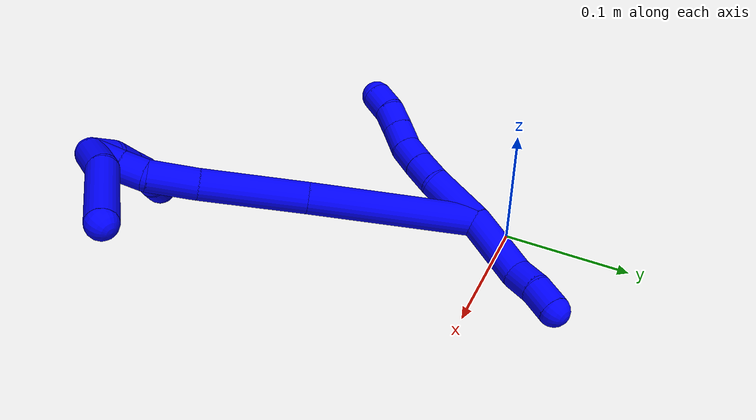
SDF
<sdf version="1.7">
 <world name="default">
  <model name="photoneo_s_sensor">
   <static>1</static>
   <pose>0 0 2 1.57079 1.57079 3.14159</pose>
   <link name="link">
    <inertial><mass>0.1</mass></inertial>
    <sensor name="sensor" type="depth">
     <update_rate>30</update_rate>
     <camera>
      <horizontal_fov>1.22</horizontal_fov>
      <image><width>1920</width><height>1200</height><format>B8G8R8</format></image>
      <clip><near>0.1</near><far>4</far></clip>
      <depth_camera><output>points</output></depth_camera>
     </camera>
     <plugin name="camera_plugin" filename="libgazebo_ros_depth_camera.so">
      <baseline>0.2</baseline>
      <alwaysOn>1</alwaysOn>
      <updateRate>0.0</updateRate>
      <cameraName>camera_ir</cameraName>
      <imageTopicName>/camera/color/image_raw</imageTopicName>
      <cameraInfoTopicName>/camera/color/camera_info</cameraInfoTopicName>
      <depthImageTopicName>/camera/depth/image_raw</depthImageTopicName>
      <depthImageCameraInfoTopicName>/camera/depth/camera_info</depthImageCameraInfoTopicName>
      <pointCloudTopicName>/camera/depth/points</pointCloudTopicName>
      <frameName>fr_optical</frameName>
      <pointCloudCutoff>0.1</pointCloudCutoff>
      <pointCloudCutoffMax>2.0</pointCloudCutoffMax>
      <distortionK1>0</distortionK1>
      <distortionK2>0</distortionK2>
      <distortionK3>0</distortionK3>
      <distortionT1>0</distortionT1>
      <distortionT2>0</distortionT2>
      <CxPrime>0</CxPrime>
      <Cx>0</Cx>
      <Cy>0</Cy>
      <focalLength>0</focalLength>
      <hackBaseline>0</hackBaseline>
     </plugin>
    </sensor>
   </link>
  </model>
  <model name="bin">
   <static>1</static>
   <link name="bottom">
    <collision name="collision-bottom">
     <pose>0 0 -0.01 0 -0 0</pose>
     <geometry><box><size>0.8 0.6 0.02</size></box></geometry>
     <surface>
      <friction><ode><mu>100</mu><mu2>100</mu2></ode></friction>
      <contact><collide_bitmask>65535</collide_bitmask></contact>
     </surface>
    </collision>
   </link>
   <link name="west_wall">
    <collision name="collision-west_wall">
     <pose>-0.41 0 0.1 0 -0 0</pose>
     <geometry><box><size>0.02 0.6 0.2</size></box></geometry>
     <surface>
      <friction><ode><mu>100</mu><mu2>100</mu2></ode></friction>
      <contact><collide_bitmask>65535</collide_bitmask></contact>
     </surface>
    </collision>
   </link>
   <link name="east_wall">
    <collision name="collision-east_wall">
     <pose>0.41 0 0.1 0 -0 0</pose>
     <geometry><box><size>0.02 0.6 0.2</size></box></geometry>
     <surface>
      <friction><ode><mu>100</mu><mu2>100</mu2></ode></friction>
      <contact><collide_bitmask>65535</collide_bitmask></contact>
     </surface>
    </collision>
   </link>
   <link name="south_wall">
    <collision name="collision-south_wall">
     <pose>0 -0.31 0.1 0 -0 0</pose>
     <geometry><box><size>0.8 0.02 0.2</size></box></geometry>
     <surface>
      <friction><ode><mu>100</mu><mu2>100</mu2></ode></friction>
      <contact><collide_bitmask>65535</collide_bitmask></contact>
     </surface>
    </collision>
   </link>
   <link name="north_wall">
    <collision name="collision-north_wall">
     <pose>0 0.31 0.1 0 -0 0</pose>
     <geometry><box><size>0.8 0.02 0.2</size></box></geometry>
     <surface>
      <friction><ode><mu>100</mu><mu2>100</mu2></ode></friction>
      <contact><collide_bitmask>65535</collide_bitmask></contact>
     </surface>
    </collision>
   </link>
  </model>
  <model name="1">
   <static>0</static>
   <link name="1">
    <collision name="collision-cylinder-e_1_2_8">
     <pose>0.003318 -0.000159 0.022871 0.006957 0.144087 0.000502</pose>
     <geometry><cylinder><radius>0.0125</radius><length>0.046222</length></cylinder></geometry>
     <surface>
      <friction><ode><mu>1.16</mu><mu2>1.16</mu2><slip1>0</slip1><slip2>0</slip2></ode></friction>
      <contact><ode><kp>1e+06</kp><kd>1</kd><max_vel>0</max_vel><min_depth>0.001</min_depth></ode></contact>
     </surface>
    </collision>
    <visual name="visual-cylinder-e_1_2_8">
     <pose>0.003318 -0.000159 0.022871 0.006957 0.144087 0.000502</pose>
     <geometry><cylinder><radius>0.0125</radius><length>0.046222</length></cylinder></geometry>
     <material><ambient>0 0 1 1</ambient></material>
    </visual>
    <collision name="collision-cylinder-e_2_8_9">
     <pose>0.006511 0.001765 0.056602 -0.18955 -0.011362 0.00108</pose>
     <geometry><cylinder><radius>0.0125</radius><length>0.022118</length></cylinder></geometry>
     <surface>
      <friction><ode><mu>1.16</mu><mu2>1.16</mu2><slip1>0</slip1><slip2>0</slip2></ode></friction>
      <contact><ode><kp>1e+06</kp><kd>1</kd><max_vel>0</max_vel><min_depth>0.001</min_depth></ode></contact>
     </surface>
    </collision>
    <visual name="visual-cylinder-e_2_8_9">
     <pose>0.006511 0.001765 0.056602 -0.18955 -0.011362 0.00108</pose>
     <geometry><cylinder><radius>0.0125</radius><length>0.022118</length></cylinder></geometry>
     <material><ambient>0 0 1 1</ambient></material>
    </visual>
    <collision name="collision-cylinder-e_3_9_10">
     <pose>0.006359 0.006274 0.077666 -0.233363 -0.002557 0.0003</pose>
     <geometry><cylinder><radius>0.0125</radius><length>0.020976</length></cylinder></geometry>
     <surface>
      <friction><ode><mu>1.16</mu><mu2>1.16</mu2><slip1>0</slip1><slip2>0</slip2></ode></friction>
      <contact><ode><kp>1e+06</kp><kd>1</kd><max_vel>0</max_vel><min_depth>0.001</min_depth></ode></contact>
     </surface>
    </collision>
    <visual name="visual-cylinder-e_3_9_10">
     <pose>0.006359 0.006274 0.077666 -0.233363 -0.002557 0.0003</pose>
     <geometry><cylinder><radius>0.0125</radius><length>0.020976</length></cylinder></geometry>
     <material><ambient>0 0 1 1</ambient></material>
    </visual>
    <collision name="collision-cylinder-e_4_10_11">
     <pose>0.007836 0.012669 0.097094 -0.406338 0.148664 -0.030681</pose>
     <geometry><cylinder><radius>0.0125</radius><length>0.020308</length></cylinder></geometry>
     <surface>
      <friction><ode><mu>1.16</mu><mu2>1.16</mu2><slip1>0</slip1><slip2>0</slip2></ode></friction>
      <contact><ode><kp>1e+06</kp><kd>1</kd><max_vel>0</max_vel><min_depth>0.001</min_depth></ode></contact>
     </surface>
    </collision>
    <visual name="visual-cylinder-e_4_10_11">
     <pose>0.007836 0.012669 0.097094 -0.406338 0.148664 -0.030681</pose>
     <geometry><cylinder><radius>0.0125</radius><length>0.020308</length></cylinder></geometry>
     <material><ambient>0 0 1 1</ambient></material>
    </visual>
    <collision name="collision-cylinder-e_5_11_12">
     <pose>0.011058 0.020167 0.11552 -0.366214 0.172614 -0.032042</pose>
     <geometry><cylinder><radius>0.0125</radius><length>0.020009</length></cylinder></geometry>
     <surface>
      <friction><ode><mu>1.16</mu><mu2>1.16</mu2><slip1>0</slip1><slip2>0</slip2></ode></friction>
      <contact><ode><kp>1e+06</kp><kd>1</kd><max_vel>0</max_vel><min_depth>0.001</min_depth></ode></contact>
     </surface>
    </collision>
    <visual name="visual-cylinder-e_5_11_12">
     <pose>0.011058 0.020167 0.11552 -0.366214 0.172614 -0.032042</pose>
     <geometry><cylinder><radius>0.0125</radius><length>0.020009</length></cylinder></geometry>
     <material><ambient>0 0 1 1</ambient></material>
    </visual>
    <collision name="collision-cylinder-e_6_12_6">
     <pose>0.012884 0.025818 0.134682 -0.209886 0.010556 -0.001112</pose>
     <geometry><cylinder><radius>0.0125</radius><length>0.020367</length></cylinder></geometry>
     <surface>
      <friction><ode><mu>1.16</mu><mu2>1.16</mu2><slip1>0</slip1><slip2>0</slip2></ode></friction>
      <contact><ode><kp>1e+06</kp><kd>1</kd><max_vel>0</max_vel><min_depth>0.001</min_depth></ode></contact>
     </surface>
    </collision>
    <visual name="visual-cylinder-e_6_12_6">
     <pose>0.012884 0.025818 0.134682 -0.209886 0.010556 -0.001112</pose>
     <geometry><cylinder><radius>0.0125</radius><length>0.020367</length></cylinder></geometry>
     <material><ambient>0 0 1 1</ambient></material>
    </visual>
    <collision name="collision-cylinder-e_1_2_13">
     <pose>-0.003586 -0.004512 -0.026986 2.97593 -0.130334 -1.33238</pose>
     <geometry><cylinder><radius>0.0125</radius><length>0.055188</length></cylinder></geometry>
     <surface>
      <friction><ode><mu>1.16</mu><mu2>1.16</mu2><slip1>0</slip1><slip2>0</slip2></ode></friction>
      <contact><ode><kp>1e+06</kp><kd>1</kd><max_vel>0</max_vel><min_depth>0.001</min_depth></ode></contact>
     </surface>
    </collision>
    <visual name="visual-cylinder-e_1_2_13">
     <pose>-0.003586 -0.004512 -0.026986 2.97593 -0.130334 -1.33238</pose>
     <geometry><cylinder><radius>0.0125</radius><length>0.055188</length></cylinder></geometry>
     <material><ambient>0 0 1 1</ambient></material>
    </visual>
    <collision name="collision-cylinder-e_2_13_14">
     <pose>-0.004801 -0.010677 -0.064565 2.98676 0.217713 1.90704</pose>
     <geometry><cylinder><radius>0.0125</radius><length>0.021963</length></cylinder></geometry>
     <surface>
      <friction><ode><mu>1.16</mu><mu2>1.16</mu2><slip1>0</slip1><slip2>0</slip2></ode></friction>
      <contact><ode><kp>1e+06</kp><kd>1</kd><max_vel>0</max_vel><min_depth>0.001</min_depth></ode></contact>
     </surface>
    </collision>
    <visual name="visual-cylinder-e_2_13_14">
     <pose>-0.004801 -0.010677 -0.064565 2.98676 0.217713 1.90704</pose>
     <geometry><cylinder><radius>0.0125</radius><length>0.021963</length></cylinder></geometry>
     <material><ambient>0 0 1 1</ambient></material>
    </visual>
    <collision name="collision-cylinder-e_3_14_5">
     <pose>-0.001889 -0.015088 -0.086233 2.89759 0.047296 0.381138</pose>
     <geometry><cylinder><radius>0.0125</radius><length>0.022849</length></cylinder></geometry>
     <surface>
      <friction><ode><mu>1.16</mu><mu2>1.16</mu2><slip1>0</slip1><slip2>0</slip2></ode></friction>
      <contact><ode><kp>1e+06</kp><kd>1</kd><max_vel>0</max_vel><min_depth>0.001</min_depth></ode></contact>
     </surface>
    </collision>
    <visual name="visual-cylinder-e_3_14_5">
     <pose>-0.001889 -0.015088 -0.086233 2.89759 0.047296 0.381138</pose>
     <geometry><cylinder><radius>0.0125</radius><length>0.022849</length></cylinder></geometry>
     <material><ambient>0 0 1 1</ambient></material>
    </visual>
    <collision name="collision-cylinder-e_1_2_15">
     <pose>0.007583 -0.047248 0.045644 0.802663 0.114919 0.048812</pose>
     <geometry><cylinder><radius>0.0125</radius><length>0.132262</length></cylinder></geometry>
     <surface>
      <friction><ode><mu>1.16</mu><mu2>1.16</mu2><slip1>0</slip1><slip2>0</slip2></ode></friction>
      <contact><ode><kp>1e+06</kp><kd>1</kd><max_vel>0</max_vel><min_depth>0.001</min_depth></ode></contact>
     </surface>
    </collision>
    <visual name="visual-cylinder-e_1_2_15">
     <pose>0.007583 -0.047248 0.045644 0.802663 0.114919 0.048812</pose>
     <geometry><cylinder><radius>0.0125</radius><length>0.132262</length></cylinder></geometry>
     <material><ambient>0 0 1 1</ambient></material>
    </visual>
    <collision name="collision-cylinder-e_2_15_16">
     <pose>0.020786 -0.125207 0.119176 0.833539 0.13466 0.059687</pose>
     <geometry><cylinder><radius>0.0125</radius><length>0.083724</length></cylinder></geometry>
     <surface>
      <friction><ode><mu>1.16</mu><mu2>1.16</mu2><slip1>0</slip1><slip2>0</slip2></ode></friction>
      <contact><ode><kp>1e+06</kp><kd>1</kd><max_vel>0</max_vel><min_depth>0.001</min_depth></ode></contact>
     </surface>
    </collision>
    <visual name="visual-cylinder-e_2_15_16">
     <pose>0.020786 -0.125207 0.119176 0.833539 0.13466 0.059687</pose>
     <geometry><cylinder><radius>0.0125</radius><length>0.083724</length></cylinder></geometry>
     <material><ambient>0 0 1 1</ambient></material>
    </visual>
    <collision name="collision-cylinder-e_3_16_17">
     <pose>0.031072 -0.170757 0.159477 0.874166 0.236663 0.110979</pose>
     <geometry><cylinder><radius>0.0125</radius><length>0.039805</length></cylinder></geometry>
     <surface>
      <friction><ode><mu>1.16</mu><mu2>1.16</mu2><slip1>0</slip1><slip2>0</slip2></ode></friction>
      <contact><ode><kp>1e+06</kp><kd>1</kd><max_vel>0</max_vel><min_depth>0.001</min_depth></ode></contact>
     </surface>
    </collision>
    <visual name="visual-cylinder-e_3_16_17">
     <pose>0.031072 -0.170757 0.159477 0.874166 0.236663 0.110979</pose>
     <geometry><cylinder><radius>0.0125</radius><length>0.039805</length></cylinder></geometry>
     <material><ambient>0 0 1 1</ambient></material>
    </visual>
    <collision name="collision-cylinder-e_4_17_18">
     <pose>0.037405 -0.190741 0.180443 0.541528 0.165439 0.04602</pose>
     <geometry><cylinder><radius>0.0125</radius><length>0.020234</length></cylinder></geometry>
     <surface>
      <friction><ode><mu>1.16</mu><mu2>1.16</mu2><slip1>0</slip1><slip2>0</slip2></ode></friction>
      <contact><ode><kp>1e+06</kp><kd>1</kd><max_vel>0</max_vel><min_depth>0.001</min_depth></ode></contact>
     </surface>
    </collision>
    <visual name="visual-cylinder-e_4_17_18">
     <pose>0.037405 -0.190741 0.180443 0.541528 0.165439 0.04602</pose>
     <geometry><cylinder><radius>0.0125</radius><length>0.020234</length></cylinder></geometry>
     <material><ambient>0 0 1 1</ambient></material>
    </visual>
    <collision name="collision-cylinder-e_5_18_1">
     <pose>0.041636 -0.201863 0.199063 0.535823 0.215658 0.059414</pose>
     <geometry><cylinder><radius>0.0125</radius><length>0.023975</length></cylinder></geometry>
     <surface>
      <friction><ode><mu>1.16</mu><mu2>1.16</mu2><slip1>0</slip1><slip2>0</slip2></ode></friction>
      <contact><ode><kp>1e+06</kp><kd>1</kd><max_vel>0</max_vel><min_depth>0.001</min_depth></ode></contact>
     </surface>
    </collision>
    <visual name="visual-cylinder-e_5_18_1">
     <pose>0.041636 -0.201863 0.199063 0.535823 0.215658 0.059414</pose>
     <geometry><cylinder><radius>0.0125</radius><length>0.023975</length></cylinder></geometry>
     <material><ambient>0 0 1 1</ambient></material>
    </visual>
    <collision name="collision-cylinder-e_1_1_19">
     <pose>0.038485 -0.199686 0.208225 -1.68151 -0.608474 0.674819</pose>
     <geometry><cylinder><radius>0.0125</radius><length>0.02</length></cylinder></geometry>
     <surface>
      <friction><ode><mu>1.16</mu><mu2>1.16</mu2><slip1>0</slip1><slip2>0</slip2></ode></friction>
      <contact><ode><kp>1e+06</kp><kd>1</kd><max_vel>0</max_vel><min_depth>0.001</min_depth></ode></contact>
     </surface>
    </collision>
    <visual name="visual-cylinder-e_1_1_19">
     <pose>0.038485 -0.199686 0.208225 -1.68151 -0.608474 0.674819</pose>
     <geometry><cylinder><radius>0.0125</radius><length>0.02</length></cylinder></geometry>
     <material><ambient>0 0 1 1</ambient></material>
    </visual>
    <collision name="collision-cylinder-e_2_19_20">
     <pose>0.024642 -0.185734 0.206731 -1.67175 -0.948803 1.03336</pose>
     <geometry><cylinder><radius>0.0125</radius><length>0.02</length></cylinder></geometry>
     <surface>
      <friction><ode><mu>1.16</mu><mu2>1.16</mu2><slip1>0</slip1><slip2>0</slip2></ode></friction>
      <contact><ode><kp>1e+06</kp><kd>1</kd><max_vel>0</max_vel><min_depth>0.001</min_depth></ode></contact>
     </surface>
    </collision>
    <visual name="visual-cylinder-e_2_19_20">
     <pose>0.024642 -0.185734 0.206731 -1.67175 -0.948803 1.03336</pose>
     <geometry><cylinder><radius>0.0125</radius><length>0.02</length></cylinder></geometry>
     <material><ambient>0 0 1 1</ambient></material>
    </visual>
    <collision name="collision-cylinder-e_3_20_21">
     <pose>0.008513 -0.17396 0.205648 -1.6536 -0.927542 0.995497</pose>
     <geometry><cylinder><radius>0.0125</radius><length>0.02</length></cylinder></geometry>
     <surface>
      <friction><ode><mu>1.16</mu><mu2>1.16</mu2><slip1>0</slip1><slip2>0</slip2></ode></friction>
      <contact><ode><kp>1e+06</kp><kd>1</kd><max_vel>0</max_vel><min_depth>0.001</min_depth></ode></contact>
     </surface>
    </collision>
    <visual name="visual-cylinder-e_3_20_21">
     <pose>0.008513 -0.17396 0.205648 -1.6536 -0.927542 0.995497</pose>
     <geometry><cylinder><radius>0.0125</radius><length>0.02</length></cylinder></geometry>
     <material><ambient>0 0 1 1</ambient></material>
    </visual>
    <collision name="collision-cylinder-e_4_21_22">
     <pose>-0.008696 -0.164221 0.206185 -1.30273 -1.17004 0.935225</pose>
     <geometry><cylinder><radius>0.0125</radius><length>0.02</length></cylinder></geometry>
     <surface>
      <friction><ode><mu>1.16</mu><mu2>1.16</mu2><slip1>0</slip1><slip2>0</slip2></ode></friction>
      <contact><ode><kp>1e+06</kp><kd>1</kd><max_vel>0</max_vel><min_depth>0.001</min_depth></ode></contact>
     </surface>
    </collision>
    <visual name="visual-cylinder-e_4_21_22">
     <pose>-0.008696 -0.164221 0.206185 -1.30273 -1.17004 0.935225</pose>
     <geometry><cylinder><radius>0.0125</radius><length>0.02</length></cylinder></geometry>
     <material><ambient>0 0 1 1</ambient></material>
    </visual>
    <collision name="collision-cylinder-e_5_22_4">
     <pose>-0.026583 -0.156194 0.209763 -1.03287 -1.05111 0.636276</pose>
     <geometry><cylinder><radius>0.0125</radius><length>0.02</length></cylinder></geometry>
     <surface>
      <friction><ode><mu>1.16</mu><mu2>1.16</mu2><slip1>0</slip1><slip2>0</slip2></ode></friction>
      <contact><ode><kp>1e+06</kp><kd>1</kd><max_vel>0</max_vel><min_depth>0.001</min_depth></ode></contact>
     </surface>
    </collision>
    <visual name="visual-cylinder-e_5_22_4">
     <pose>-0.026583 -0.156194 0.209763 -1.03287 -1.05111 0.636276</pose>
     <geometry><cylinder><radius>0.0125</radius><length>0.02</length></cylinder></geometry>
     <material><ambient>0 0 1 1</ambient></material>
    </visual>
    <collision name="collision-cylinder-e_1_1_23">
     <pose>0.050447 -0.211894 0.19406 2.87892 0.380685 1.93962</pose>
     <geometry><cylinder><radius>0.0125</radius><length>0.03362</length></cylinder></geometry>
     <surface>
      <friction><ode><mu>1.16</mu><mu2>1.16</mu2><slip1>0</slip1><slip2>0</slip2></ode></friction>
      <contact><ode><kp>1e+06</kp><kd>1</kd><max_vel>0</max_vel><min_depth>0.001</min_depth></ode></contact>
     </surface>
    </collision>
    <visual name="visual-cylinder-e_1_1_23">
     <pose>0.050447 -0.211894 0.19406 2.87892 0.380685 1.93962</pose>
     <geometry><cylinder><radius>0.0125</radius><length>0.03362</length></cylinder></geometry>
     <material><ambient>0 0 1 1</ambient></material>
    </visual>
    <collision name="collision-cylinder-e_2_23_3">
     <pose>0.06401 -0.233092 0.151529 2.58345 0.22227 0.74274</pose>
     <geometry><cylinder><radius>0.0125</radius><length>0.06638</length></cylinder></geometry>
     <surface>
      <friction><ode><mu>1.16</mu><mu2>1.16</mu2><slip1>0</slip1><slip2>0</slip2></ode></friction>
      <contact><ode><kp>1e+06</kp><kd>1</kd><max_vel>0</max_vel><min_depth>0.001</min_depth></ode></contact>
     </surface>
    </collision>
    <visual name="visual-cylinder-e_2_23_3">
     <pose>0.06401 -0.233092 0.151529 2.58345 0.22227 0.74274</pose>
     <geometry><cylinder><radius>0.0125</radius><length>0.06638</length></cylinder></geometry>
     <material><ambient>0 0 1 1</ambient></material>
    </visual>
    <collision name="collision-sphere-3">
     <pose>0.071326 -0.250237 0.124068 0 -0 0</pose>
     <geometry><sphere><radius>0.0125</radius></sphere></geometry>
     <surface>
      <friction><ode><mu>1.16</mu><mu2>1.16</mu2><slip1>0</slip1><slip2>0</slip2></ode></friction>
      <contact><ode><kp>1e+06</kp><kd>1</kd><max_vel>0</max_vel><min_depth>0.001</min_depth></ode></contact>
     </surface>
    </collision>
    <visual name="visual-sphere-3">
     <pose>0.071326 -0.250237 0.124068 0 -0 0</pose>
     <geometry><sphere><radius>0.0125</radius></sphere></geometry>
     <material><ambient>0 0 1 1</ambient></material>
    </visual>
    <collision name="collision-sphere-23">
     <pose>0.056693 -0.215946 0.178989 0 -0 0</pose>
     <geometry><sphere><radius>0.0125</radius></sphere></geometry>
     <surface>
      <friction><ode><mu>1.16</mu><mu2>1.16</mu2><slip1>0</slip1><slip2>0</slip2></ode></friction>
      <contact><ode><kp>1e+06</kp><kd>1</kd><max_vel>0</max_vel><min_depth>0.001</min_depth></ode></contact>
     </surface>
    </collision>
    <visual name="visual-sphere-23">
     <pose>0.056693 -0.215946 0.178989 0 -0 0</pose>
     <geometry><sphere><radius>0.0125</radius></sphere></geometry>
     <material><ambient>0 0 1 1</ambient></material>
    </visual>
    <collision name="collision-sphere-4">
     <pose>-0.035263 -0.15193 0.212307 0 -0 0</pose>
     <geometry><sphere><radius>0.0125</radius></sphere></geometry>
     <surface>
      <friction><ode><mu>1.16</mu><mu2>1.16</mu2><slip1>0</slip1><slip2>0</slip2></ode></friction>
      <contact><ode><kp>1e+06</kp><kd>1</kd><max_vel>0</max_vel><min_depth>0.001</min_depth></ode></contact>
     </surface>
    </collision>
    <visual name="visual-sphere-4">
     <pose>-0.035263 -0.15193 0.212307 0 -0 0</pose>
     <geometry><sphere><radius>0.0125</radius></sphere></geometry>
     <material><ambient>0 0 1 1</ambient></material>
    </visual>
    <collision name="collision-sphere-22">
     <pose>-0.017903 -0.160459 0.207218 0 -0 0</pose>
     <geometry><sphere><radius>0.0125</radius></sphere></geometry>
     <surface>
      <friction><ode><mu>1.16</mu><mu2>1.16</mu2><slip1>0</slip1><slip2>0</slip2></ode></friction>
      <contact><ode><kp>1e+06</kp><kd>1</kd><max_vel>0</max_vel><min_depth>0.001</min_depth></ode></contact>
     </surface>
    </collision>
    <visual name="visual-sphere-22">
     <pose>-0.017903 -0.160459 0.207218 0 -0 0</pose>
     <geometry><sphere><radius>0.0125</radius></sphere></geometry>
     <material><ambient>0 0 1 1</ambient></material>
    </visual>
    <collision name="collision-sphere-21">
     <pose>0.000512 -0.167983 0.205152 0 -0 0</pose>
     <geometry><sphere><radius>0.0125</radius></sphere></geometry>
     <surface>
      <friction><ode><mu>1.16</mu><mu2>1.16</mu2><slip1>0</slip1><slip2>0</slip2></ode></friction>
      <contact><ode><kp>1e+06</kp><kd>1</kd><max_vel>0</max_vel><min_depth>0.001</min_depth></ode></contact>
     </surface>
    </collision>
    <visual name="visual-sphere-21">
     <pose>0.000512 -0.167983 0.205152 0 -0 0</pose>
     <geometry><sphere><radius>0.0125</radius></sphere></geometry>
     <material><ambient>0 0 1 1</ambient></material>
    </visual>
    <collision name="collision-sphere-20">
     <pose>0.016515 -0.179938 0.206144 0 -0 0</pose>
     <geometry><sphere><radius>0.0125</radius></sphere></geometry>
     <surface>
      <friction><ode><mu>1.16</mu><mu2>1.16</mu2><slip1>0</slip1><slip2>0</slip2></ode></friction>
      <contact><ode><kp>1e+06</kp><kd>1</kd><max_vel>0</max_vel><min_depth>0.001</min_depth></ode></contact>
     </surface>
    </collision>
    <visual name="visual-sphere-20">
     <pose>0.016515 -0.179938 0.206144 0 -0 0</pose>
     <geometry><sphere><radius>0.0125</radius></sphere></geometry>
     <material><ambient>0 0 1 1</ambient></material>
    </visual>
    <collision name="collision-sphere-12">
     <pose>0.012777 0.023696 0.124723 0 -0 0</pose>
     <geometry><sphere><radius>0.0125</radius></sphere></geometry>
     <surface>
      <friction><ode><mu>1.16</mu><mu2>1.16</mu2><slip1>0</slip1><slip2>0</slip2></ode></friction>
      <contact><ode><kp>1e+06</kp><kd>1</kd><max_vel>0</max_vel><min_depth>0.001</min_depth></ode></contact>
     </surface>
    </collision>
    <visual name="visual-sphere-12">
     <pose>0.012777 0.023696 0.124723 0 -0 0</pose>
     <geometry><sphere><radius>0.0125</radius></sphere></geometry>
     <material><ambient>0 0 1 1</ambient></material>
    </visual>
    <collision name="collision-sphere-11">
     <pose>0.00934 0.016638 0.106318 0 -0 0</pose>
     <geometry><sphere><radius>0.0125</radius></sphere></geometry>
     <surface>
      <friction><ode><mu>1.16</mu><mu2>1.16</mu2><slip1>0</slip1><slip2>0</slip2></ode></friction>
      <contact><ode><kp>1e+06</kp><kd>1</kd><max_vel>0</max_vel><min_depth>0.001</min_depth></ode></contact>
     </surface>
    </collision>
    <visual name="visual-sphere-11">
     <pose>0.00934 0.016638 0.106318 0 -0 0</pose>
     <geometry><sphere><radius>0.0125</radius></sphere></geometry>
     <material><ambient>0 0 1 1</ambient></material>
    </visual>
    <collision name="collision-sphere-10">
     <pose>0.006332 0.0087 0.08787 0 -0 0</pose>
     <geometry><sphere><radius>0.0125</radius></sphere></geometry>
     <surface>
      <friction><ode><mu>1.16</mu><mu2>1.16</mu2><slip1>0</slip1><slip2>0</slip2></ode></friction>
      <contact><ode><kp>1e+06</kp><kd>1</kd><max_vel>0</max_vel><min_depth>0.001</min_depth></ode></contact>
     </surface>
    </collision>
    <visual name="visual-sphere-10">
     <pose>0.006332 0.0087 0.08787 0 -0 0</pose>
     <geometry><sphere><radius>0.0125</radius></sphere></geometry>
     <material><ambient>0 0 1 1</ambient></material>
    </visual>
    <collision name="collision-sphere-9">
     <pose>0.006386 0.003849 0.067463 0 -0 0</pose>
     <geometry><sphere><radius>0.0125</radius></sphere></geometry>
     <surface>
      <friction><ode><mu>1.16</mu><mu2>1.16</mu2><slip1>0</slip1><slip2>0</slip2></ode></friction>
      <contact><ode><kp>1e+06</kp><kd>1</kd><max_vel>0</max_vel><min_depth>0.001</min_depth></ode></contact>
     </surface>
    </collision>
    <visual name="visual-sphere-9">
     <pose>0.006386 0.003849 0.067463 0 -0 0</pose>
     <geometry><sphere><radius>0.0125</radius></sphere></geometry>
     <material><ambient>0 0 1 1</ambient></material>
    </visual>
    <collision name="collision-sphere-2">
     <geometry><sphere><radius>0.0125</radius></sphere></geometry>
     <surface>
      <friction><ode><mu>1.16</mu><mu2>1.16</mu2><slip1>0</slip1><slip2>0</slip2></ode></friction>
      <contact><ode><kp>1e+06</kp><kd>1</kd><max_vel>0</max_vel><min_depth>0.001</min_depth></ode></contact>
     </surface>
    </collision>
    <visual name="visual-sphere-2">
     <geometry><sphere><radius>0.0125</radius></sphere></geometry>
     <material><ambient>0 0 1 1</ambient></material>
    </visual>
    <collision name="collision-sphere-19">
     <pose>0.032769 -0.191531 0.207318 0 -0 0</pose>
     <geometry><sphere><radius>0.0125</radius></sphere></geometry>
     <surface>
      <friction><ode><mu>1.16</mu><mu2>1.16</mu2><slip1>0</slip1><slip2>0</slip2></ode></friction>
      <contact><ode><kp>1e+06</kp><kd>1</kd><max_vel>0</max_vel><min_depth>0.001</min_depth></ode></contact>
     </surface>
    </collision>
    <visual name="visual-sphere-19">
     <pose>0.032769 -0.191531 0.207318 0 -0 0</pose>
     <geometry><sphere><radius>0.0125</radius></sphere></geometry>
     <material><ambient>0 0 1 1</ambient></material>
    </visual>
    <collision name="collision-sphere-8">
     <pose>0.006637 -0.000318 0.045742 0 -0 0</pose>
     <geometry><sphere><radius>0.0125</radius></sphere></geometry>
     <surface>
      <friction><ode><mu>1.16</mu><mu2>1.16</mu2><slip1>0</slip1><slip2>0</slip2></ode></friction>
      <contact><ode><kp>1e+06</kp><kd>1</kd><max_vel>0</max_vel><min_depth>0.001</min_depth></ode></contact>
     </surface>
    </collision>
    <visual name="visual-sphere-8">
     <pose>0.006637 -0.000318 0.045742 0 -0 0</pose>
     <geometry><sphere><radius>0.0125</radius></sphere></geometry>
     <material><ambient>0 0 1 1</ambient></material>
    </visual>
    <collision name="collision-sphere-6">
     <pose>0.012992 0.027939 0.144642 0 -0 0</pose>
     <geometry><sphere><radius>0.0125</radius></sphere></geometry>
     <surface>
      <friction><ode><mu>1.16</mu><mu2>1.16</mu2><slip1>0</slip1><slip2>0</slip2></ode></friction>
      <contact><ode><kp>1e+06</kp><kd>1</kd><max_vel>0</max_vel><min_depth>0.001</min_depth></ode></contact>
     </surface>
    </collision>
    <visual name="visual-sphere-6">
     <pose>0.012992 0.027939 0.144642 0 -0 0</pose>
     <geometry><sphere><radius>0.0125</radius></sphere></geometry>
     <material><ambient>0 0 1 1</ambient></material>
    </visual>
    <collision name="collision-sphere-13">
     <pose>-0.007173 -0.009024 -0.053971 0 -0 0</pose>
     <geometry><sphere><radius>0.0125</radius></sphere></geometry>
     <surface>
      <friction><ode><mu>1.16</mu><mu2>1.16</mu2><slip1>0</slip1><slip2>0</slip2></ode></friction>
      <contact><ode><kp>1e+06</kp><kd>1</kd><max_vel>0</max_vel><min_depth>0.001</min_depth></ode></contact>
     </surface>
    </collision>
    <visual name="visual-sphere-13">
     <pose>-0.007173 -0.009024 -0.053971 0 -0 0</pose>
     <geometry><sphere><radius>0.0125</radius></sphere></geometry>
     <material><ambient>0 0 1 1</ambient></material>
    </visual>
    <collision name="collision-sphere-14">
     <pose>-0.002429 -0.012331 -0.075159 0 -0 0</pose>
     <geometry><sphere><radius>0.0125</radius></sphere></geometry>
     <surface>
      <friction><ode><mu>1.16</mu><mu2>1.16</mu2><slip1>0</slip1><slip2>0</slip2></ode></friction>
      <contact><ode><kp>1e+06</kp><kd>1</kd><max_vel>0</max_vel><min_depth>0.001</min_depth></ode></contact>
     </surface>
    </collision>
    <visual name="visual-sphere-14">
     <pose>-0.002429 -0.012331 -0.075159 0 -0 0</pose>
     <geometry><sphere><radius>0.0125</radius></sphere></geometry>
     <material><ambient>0 0 1 1</ambient></material>
    </visual>
    <collision name="collision-sphere-5">
     <pose>-0.001348 -0.017844 -0.097306 0 -0 0</pose>
     <geometry><sphere><radius>0.0125</radius></sphere></geometry>
     <surface>
      <friction><ode><mu>1.16</mu><mu2>1.16</mu2><slip1>0</slip1><slip2>0</slip2></ode></friction>
      <contact><ode><kp>1e+06</kp><kd>1</kd><max_vel>0</max_vel><min_depth>0.001</min_depth></ode></contact>
     </surface>
    </collision>
    <visual name="visual-sphere-5">
     <pose>-0.001348 -0.017844 -0.097306 0 -0 0</pose>
     <geometry><sphere><radius>0.0125</radius></sphere></geometry>
     <material><ambient>0 0 1 1</ambient></material>
    </visual>
    <collision name="collision-sphere-15">
     <pose>0.015166 -0.094496 0.091288 0 -0 0</pose>
     <geometry><sphere><radius>0.0125</radius></sphere></geometry>
     <surface>
      <friction><ode><mu>1.16</mu><mu2>1.16</mu2><slip1>0</slip1><slip2>0</slip2></ode></friction>
      <contact><ode><kp>1e+06</kp><kd>1</kd><max_vel>0</max_vel><min_depth>0.001</min_depth></ode></contact>
     </surface>
    </collision>
    <visual name="visual-sphere-15">
     <pose>0.015166 -0.094496 0.091288 0 -0 0</pose>
     <geometry><sphere><radius>0.0125</radius></sphere></geometry>
     <material><ambient>0 0 1 1</ambient></material>
    </visual>
    <collision name="collision-sphere-16">
     <pose>0.026406 -0.155917 0.147063 0 -0 0</pose>
     <geometry><sphere><radius>0.0125</radius></sphere></geometry>
     <surface>
      <friction><ode><mu>1.16</mu><mu2>1.16</mu2><slip1>0</slip1><slip2>0</slip2></ode></friction>
      <contact><ode><kp>1e+06</kp><kd>1</kd><max_vel>0</max_vel><min_depth>0.001</min_depth></ode></contact>
     </surface>
    </collision>
    <visual name="visual-sphere-16">
     <pose>0.026406 -0.155917 0.147063 0 -0 0</pose>
     <geometry><sphere><radius>0.0125</radius></sphere></geometry>
     <material><ambient>0 0 1 1</ambient></material>
    </visual>
    <collision name="collision-sphere-17">
     <pose>0.035739 -0.185597 0.171892 0 -0 0</pose>
     <geometry><sphere><radius>0.0125</radius></sphere></geometry>
     <surface>
      <friction><ode><mu>1.16</mu><mu2>1.16</mu2><slip1>0</slip1><slip2>0</slip2></ode></friction>
      <contact><ode><kp>1e+06</kp><kd>1</kd><max_vel>0</max_vel><min_depth>0.001</min_depth></ode></contact>
     </surface>
    </collision>
    <visual name="visual-sphere-17">
     <pose>0.035739 -0.185597 0.171892 0 -0 0</pose>
     <geometry><sphere><radius>0.0125</radius></sphere></geometry>
     <material><ambient>0 0 1 1</ambient></material>
    </visual>
    <collision name="collision-sphere-18">
     <pose>0.039071 -0.195884 0.188994 0 -0 0</pose>
     <geometry><sphere><radius>0.0125</radius></sphere></geometry>
     <surface>
      <friction><ode><mu>1.16</mu><mu2>1.16</mu2><slip1>0</slip1><slip2>0</slip2></ode></friction>
      <contact><ode><kp>1e+06</kp><kd>1</kd><max_vel>0</max_vel><min_depth>0.001</min_depth></ode></contact>
     </surface>
    </collision>
    <visual name="visual-sphere-18">
     <pose>0.039071 -0.195884 0.188994 0 -0 0</pose>
     <geometry><sphere><radius>0.0125</radius></sphere></geometry>
     <material><ambient>0 0 1 1</ambient></material>
    </visual>
    <collision name="collision-sphere-1">
     <pose>0.044202 -0.207841 0.209131 0 -0 0</pose>
     <geometry><sphere><radius>0.0125</radius></sphere></geometry>
     <surface>
      <friction><ode><mu>1.16</mu><mu2>1.16</mu2><slip1>0</slip1><slip2>0</slip2></ode></friction>
      <contact><ode><kp>1e+06</kp><kd>1</kd><max_vel>0</max_vel><min_depth>0.001</min_depth></ode></contact>
     </surface>
    </collision>
    <visual name="visual-sphere-1">
     <pose>0.044202 -0.207841 0.209131 0 -0 0</pose>
     <geometry><sphere><radius>0.0125</radius></sphere></geometry>
     <material><ambient>0 0 1 1</ambient></material>
    </visual>
    <inertial>
     <pose>0.017513 -0.095865 0.098916 0 -0 0</pose>
     <mass>0.75</mass>
     <inertia>
      <ixx>0.000327</ixx>
      <ixy>0</ixy>
      <ixz>0</ixz>
      <iyy>0.000197</iyy>
      <iyz>0</iyz>
      <izz>0.000178</izz>
     </inertia>
    </inertial>
   </link>
   <pose>0.021729 -0.020742 0.026726 0.354231 -1.43575 0.824042</pose>
  </model>
 </world>
</sdf>
